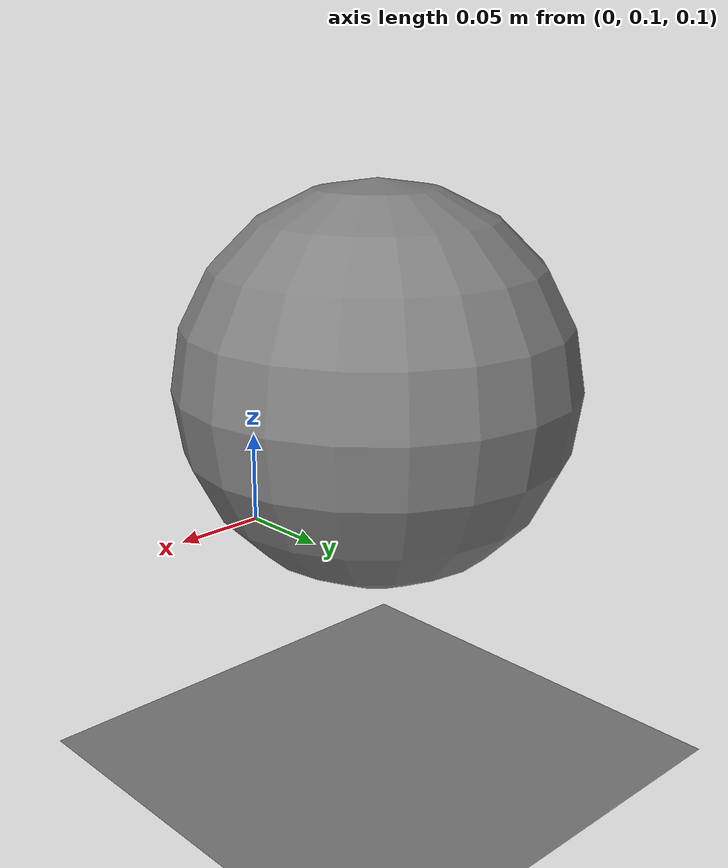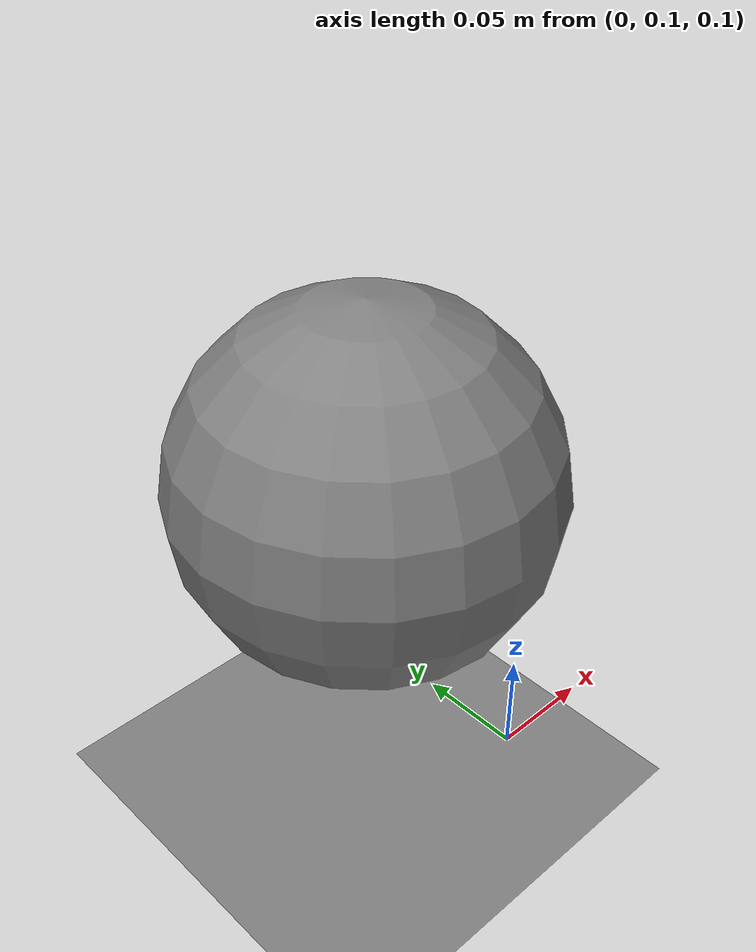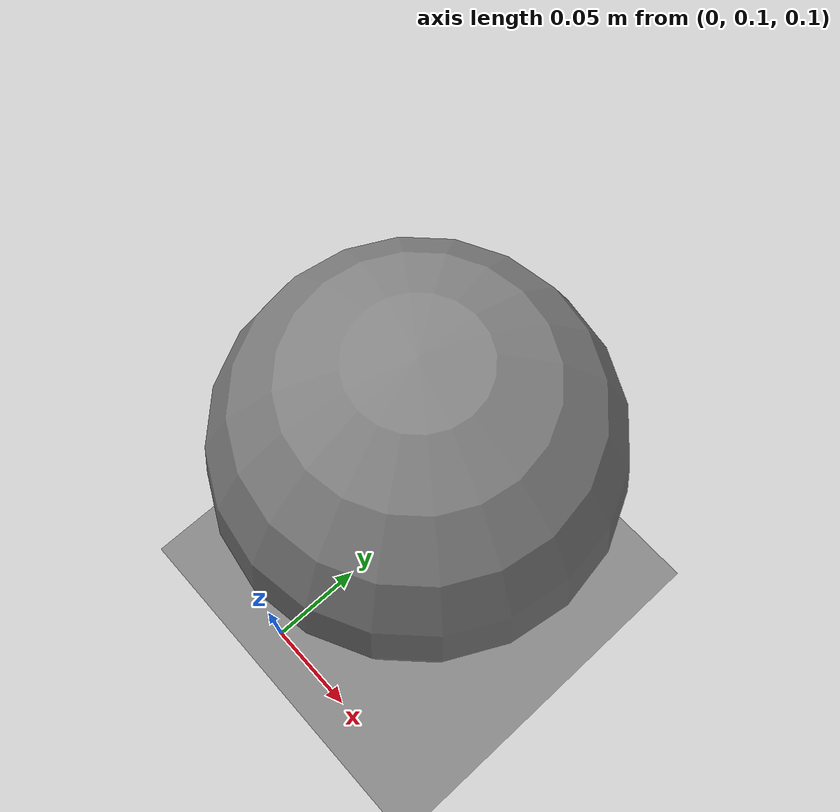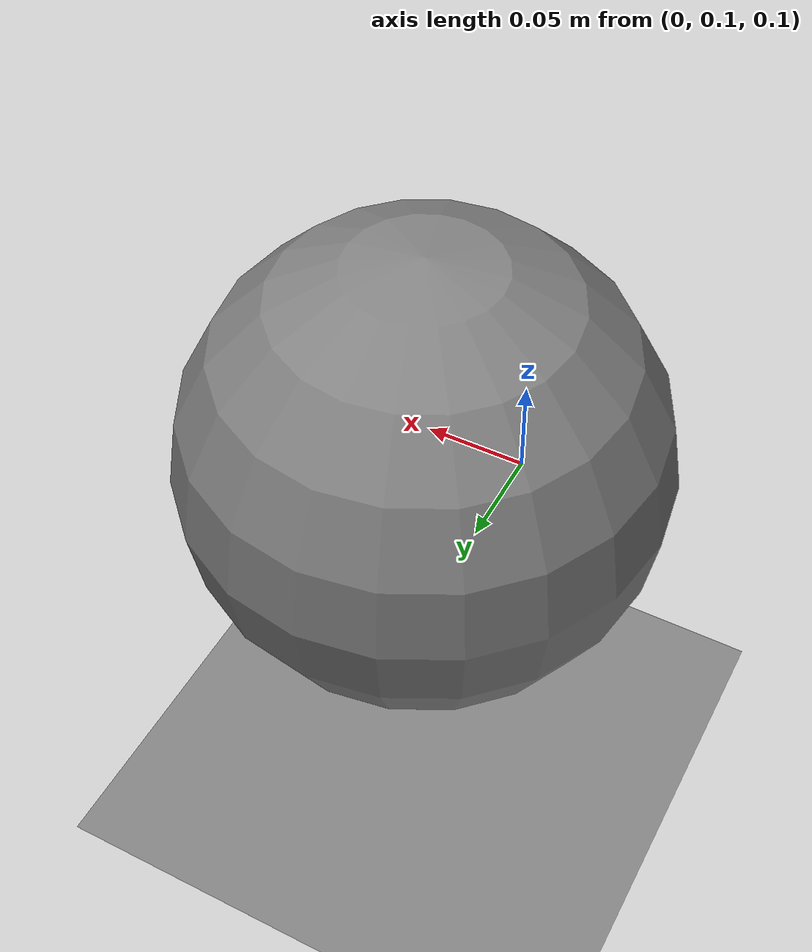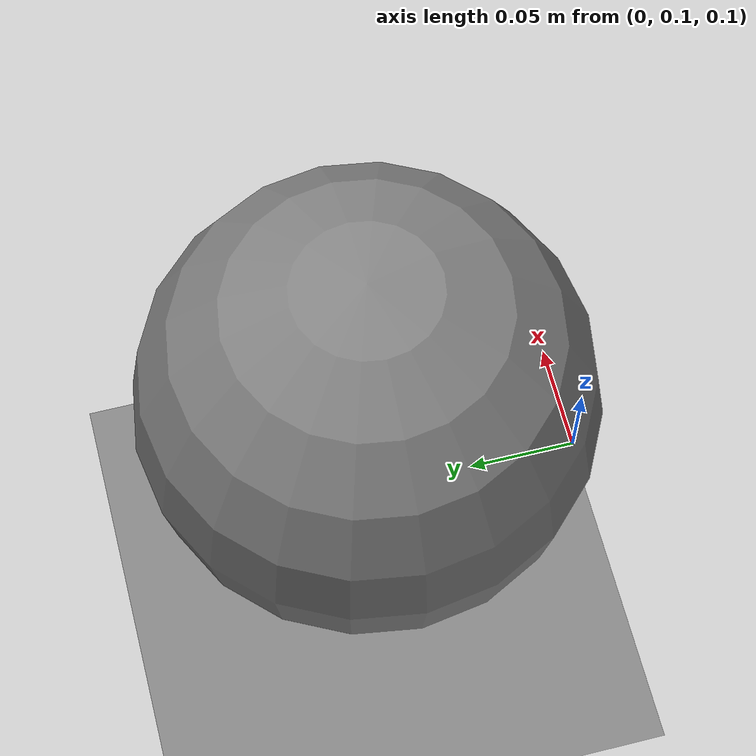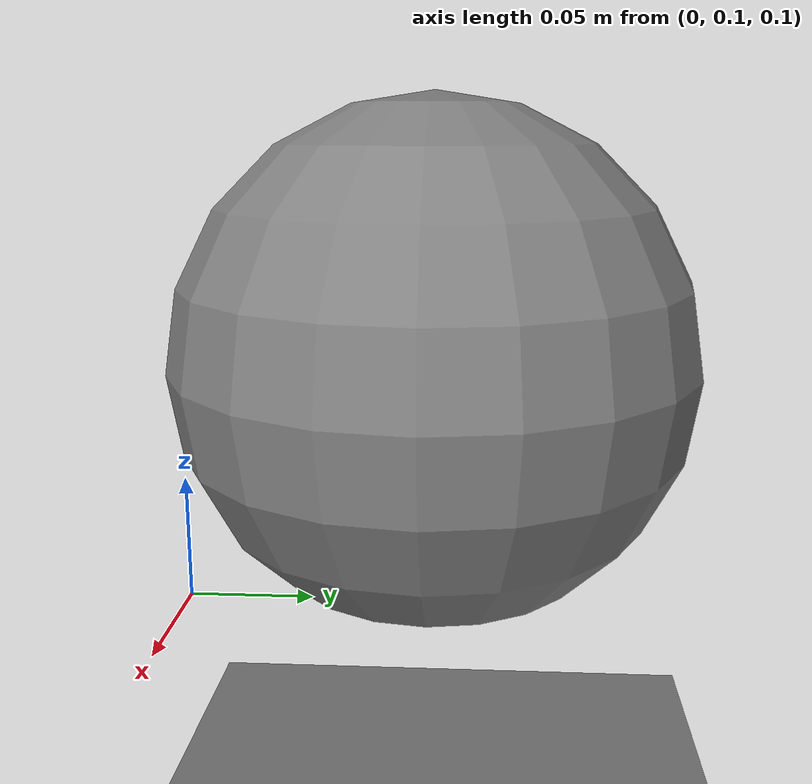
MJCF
<mujoco>
    <compiler angle="radian" meshdir="meshes" autolimits="true" />
    <option timestep="1e-3"/>
    <asset>
        <mesh name="tetrahedron" vertex="0 0 0 1 0 0 0 1 0 0 0 1" />
        <texture type="skybox" file="../asset/desert.png"
            gridsize="3 4" gridlayout=".U..LFRB.D.." />
        <texture name="plane" type="2d" builtin="checker" rgb1=".1 .1 .1" rgb2=".9 .9 .9"
            width="512" height="512" mark="cross" markrgb=".8 .8 .8" />
        <material name="plane" reflectance="0.3" texture="plane" texrepeat="1 1" texuniform="true" />
    </asset>

    <worldbody>
        <geom name="floor" pos="0 0 0" size="0 0 .25" type="plane" material="plane"
           solimp="0.5 1 0.1 0.5 2" solref="0.02 1" solmix="0" condim="1"/>
        <light directional="true" ambient=".3 .3 .3" pos="30 30 30" dir="0 -.5 -1"
            diffuse=".5 .5 .5" specular=".5 .5 .5" />

        <body name="ball" pos="0 0.2 0.2">
            <joint type="slide" axis="0 0 1"/>
            <geom size="0.1" solimp="0.1 0.9 0.001 0.5 2" solref="0.01 1" mass="1" solmix="1" condim="1"/>
        </body>

    </worldbody>

    <sensor>
        <framepos name="ball_pos" objtype="body" objname="ball"/>
        <framelinacc name="ball_acc" objtype="body" objname="ball"/>
    <framelinvel name="ball_vel" objtype="body" objname="ball"/>
    </sensor>
</mujoco>
